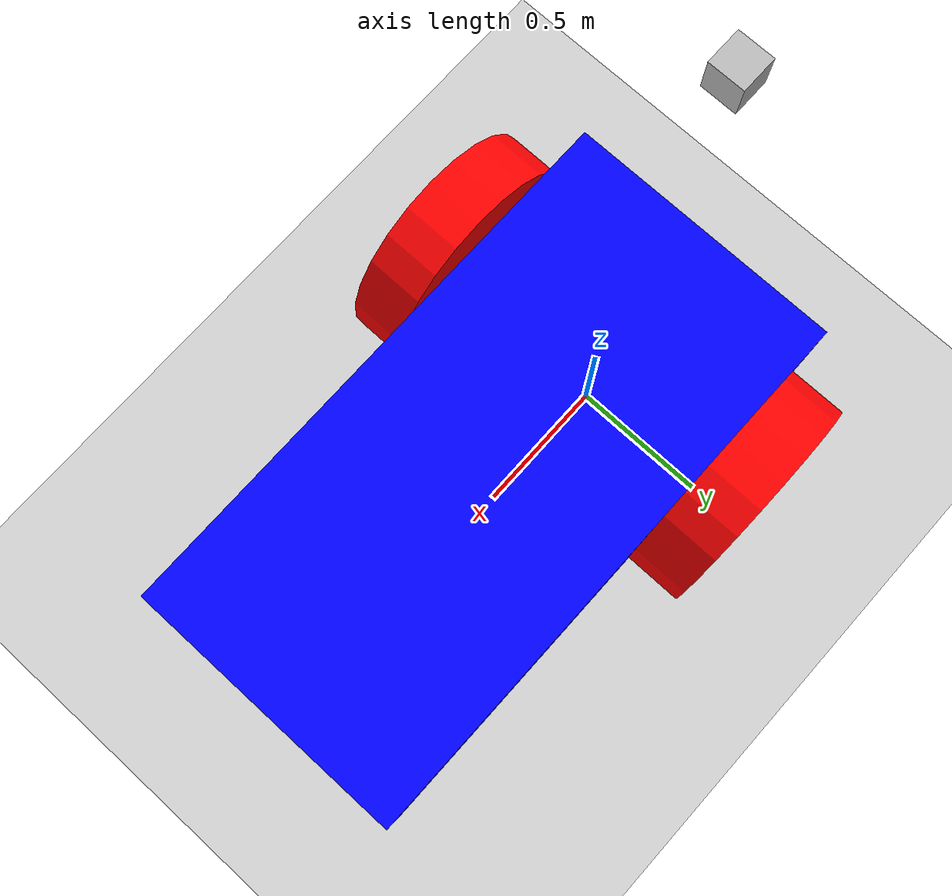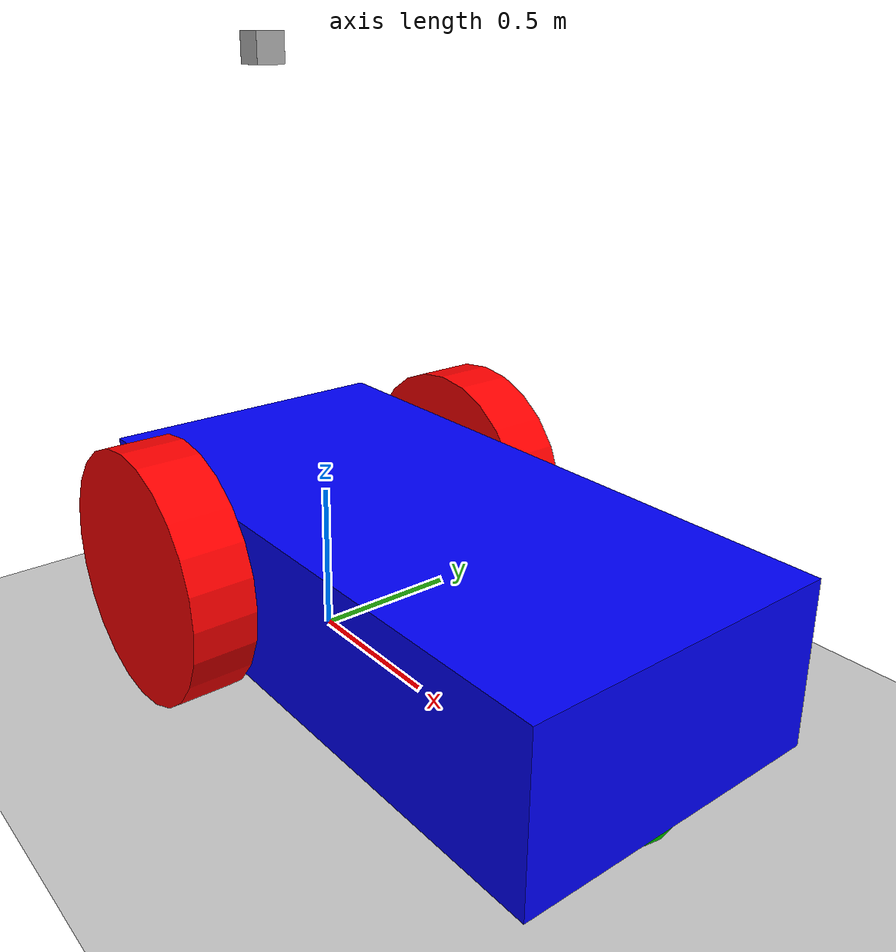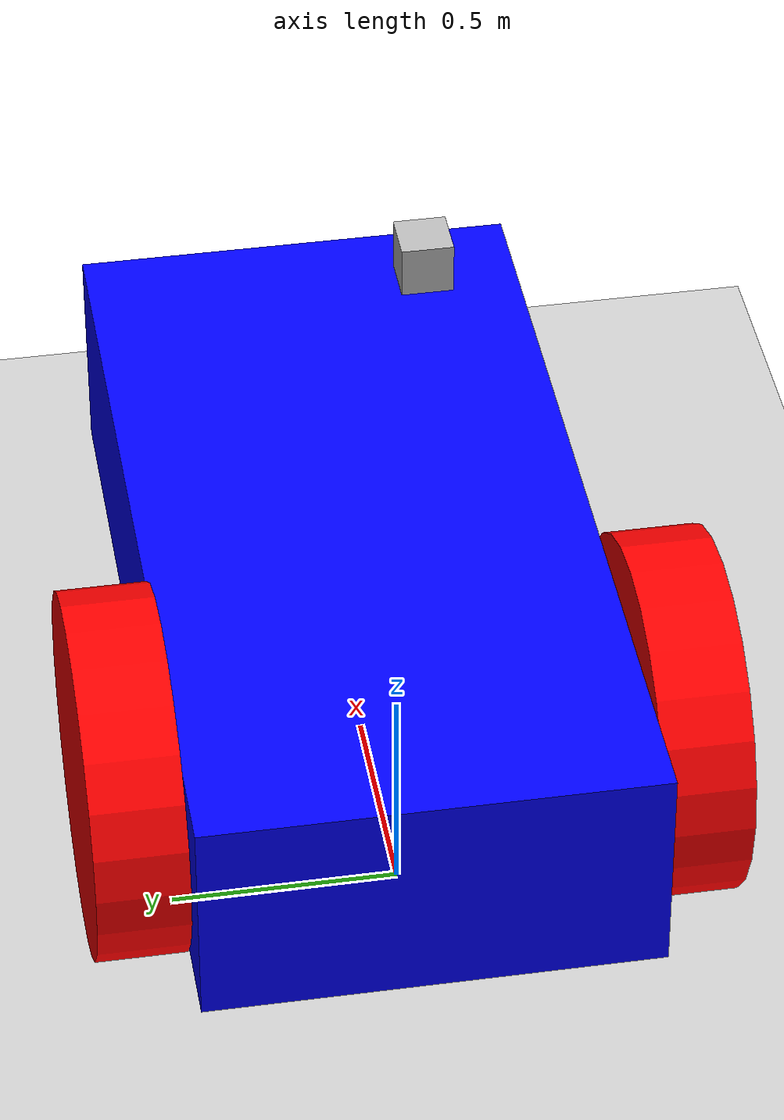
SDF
<?xml version="1.0" ?>
<sdf version="1.8">
  <world name="Moving_robot">
    <physics name="1ms" type="ignored">
      <max_step_size>0.001</max_step_size>
      <real_time_factor>1.0</real_time_factor>
    </physics>
    <plugin filename="ignition-gazebo-sensors-system" name="ignition::gazebo::systems::Sensors">
      <render_engine>ogre</render_engine>
    </plugin>
    <plugin filename="libignition-gazebo-physics-system.so" name="ignition::gazebo::systems::Physics">
    </plugin>
    <plugin filename="libignition-gazebo-user-commands-system.so" name="ignition::gazebo::systems::UserCommands">
    </plugin>
    <plugin filename="libignition-gazebo-scene-broadcaster-system.so" name="ignition::gazebo::systems::SceneBroadcaster">
    </plugin>

    <light type="directional" name="sun">
      <cast_shadows>true</cast_shadows>
      <pose>0 0 10 0 0 0</pose>
      <diffuse>0.8 0.8 0.8 1</diffuse>
      <specular>0.2 0.2 0.2 1</specular>
      <attenuation>
        <range>1000</range>
        <constant>0.9</constant>
        <linear>0.01</linear>
        <quadratic>0.001</quadratic>
      </attenuation>
      <direction>-0.5 0.1 -0.9</direction>
    </light>

    <model name="ground_plane">
      <static>true</static>
      <link name="link">
        <collision name="collision">
          <geometry>
            <plane>
              <normal>0 0 1</normal>
            </plane>
          </geometry>
        </collision>
        <visual name="visual">
          <geometry>
            <plane>
              <normal>0 0 1</normal>
              <size>100 100</size>
            </plane>
          </geometry>
          <material>
            <ambient>0.8 0.8 0.8 1</ambient>
            <diffuse>0.8 0.8 0.8 1</diffuse>
            <specular>0.8 0.8 0.8 1</specular>
          </material>
        </visual>
      </link>
    </model>

    <model name="vehicle">
      <include>
        <uri>model://vehicle</uri>
      </include>

    </model>
    <!-- #endregion -->
  </world>
</sdf>

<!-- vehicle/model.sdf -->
<sdf version="1.8">
  <model name='vehicle_blue'>
    <pose>0 0 0 0 0 0</pose>      <!--the pose is relative to the world by default-->

    <!-- #region links -->
    <link name='chassis'>
      <pose relative_to='__model__'>0.5 0 0.4 0 0 0</pose>
      <inertial>          <!--inertial properties of the link mass, inertia matix-->
        <mass>1.14395</mass>
        <inertia>
          <ixx>0.126164</ixx>
          <ixy>0</ixy>
          <ixz>0</ixz>
          <iyy>0.416519</iyy>
          <iyz>0</iyz>
          <izz>0.481014</izz>
        </inertia>
      </inertial>
      <visual name='visual'>
        <geometry>
          <box>
            <size>2.0 1.0 0.5</size>              <!--question: this size is in meter-->
          </box>
        </geometry>
        <!--let's add color to our link-->
        <material>
          <ambient>0.0 0.0 1.0 1</ambient>
          <diffuse>0.0 0.0 1.0 1</diffuse>
          <specular>0.0 0.0 1.0 1</specular>
        </material>
      </visual>
      <collision name='collision'>          <!--todo: describe why we need the collision-->
        <geometry>
          <box>
            <size>2.0 1.0 0.5</size>
          </box>
        </geometry>
      </collision>
    </link>

    <!--let's build the left wheel-->
    <link name='left_wheel'>
      <pose relative_to="chassis">-0.5 0.6 0 -1.5707 0 0</pose>        <!--angles are in radian-->
      <inertial>
        <mass>2</mass>
        <inertia>
          <ixx>0.145833</ixx>
          <ixy>0</ixy>
          <ixz>0</ixz>
          <iyy>0.145833</iyy>
          <iyz>0</iyz>
          <izz>0.125</izz>
        </inertia>
      </inertial>
      <visual name='visual'>
        <geometry>
          <cylinder>
            <radius>0.4</radius>
            <length>0.2</length>
          </cylinder>
        </geometry>
        <material>
          <ambient>1.0 0.0 0.0 1</ambient>
          <diffuse>1.0 0.0 0.0 1</diffuse>
          <specular>1.0 0.0 0.0 1</specular>
        </material>
      </visual>
      <collision name='collision'>
        <geometry>
          <cylinder>
            <radius>0.4</radius>
            <length>0.2</length>
          </cylinder>
        </geometry>
      </collision>
    </link>

    <!--copy and paste for right wheel but change position-->
    <link name='right_wheel'>
      <pose relative_to="chassis">-0.5 -0.6 0 -1.5707 0 0</pose>        <!--angles are in radian-->
      <inertial>
        <mass>1</mass>
        <inertia>
          <ixx>0.145833</ixx>
          <ixy>0</ixy>
          <ixz>0</ixz>
          <iyy>0.145833</iyy>
          <iyz>0</iyz>
          <izz>0.125</izz>
        </inertia>
      </inertial>
      <visual name='visual'>
        <geometry>
          <cylinder>
            <radius>0.4</radius>
            <length>0.2</length>
          </cylinder>
        </geometry>
        <material>
          <ambient>1.0 0.0 0.0 1</ambient>
          <diffuse>1.0 0.0 0.0 1</diffuse>
          <specular>1.0 0.0 0.0 1</specular>
        </material>
      </visual>
      <collision name='collision'>
        <geometry>
          <cylinder>
            <radius>0.4</radius>
            <length>0.2</length>
          </cylinder>
        </geometry>
      </collision>
    </link>

    <frame name="camera_frame" attached_to='chassis'>
      <pose>-0.8 0 1.5 0 0 0</pose>
    </frame>

    <link name="camera_link">
      <pose relative_to='camera_frame'>0 0 0 0 0 0</pose>
      <inertial>
        <mass>0.1</mass>
        <inertia>
          <ixx>0.000166667</ixx>
          <iyy>0.000166667</iyy>
          <izz>0.000166667</izz>
        </inertia>
      </inertial>
      <collision name="collision">
        <geometry>
          <box>
            <size>0.1 0.1 0.1</size>
          </box>
        </geometry>
      </collision>
      <visual name="visual">
        <geometry>
          <box>
            <size>0.1 0.1 0.1</size>
          </box>
        </geometry>
      </visual>
      <sensor name="camera" type="camera">
        <camera>
          <horizontal_fov>1.047</horizontal_fov>
          <image>
            <width>320</width>
            <height>240</height>
          </image>
          <clip>
            <near>0.1</near>
            <far>100</far>
          </clip>
        </camera>
        <always_on>1</always_on>
        <update_rate>30</update_rate>
        <visualize>true</visualize>
        <topic>camera</topic>
      </sensor>
    </link>

    <joint name='camera_joint' type='fixed'>
      <parent>chassis</parent>
      <child>camera_link</child>
    </joint>

    <frame name="caster_frame" attached_to='chassis'>
      <pose>0.8 0 -0.2 0 0 0</pose>
    </frame>

    <!--caster wheel-->
    <link name='caster'>
      <pose relative_to='caster_frame'/>
      <inertial>
        <mass>1</mass>
        <inertia>
          <ixx>0.1</ixx>
          <ixy>0</ixy>
          <ixz>0</ixz>
          <iyy>0.1</iyy>
          <iyz>0</iyz>
          <izz>0.1</izz>
        </inertia>
      </inertial>
      <visual name='visual'>
        <geometry>
          <sphere>
            <radius>0.2</radius>
          </sphere>
        </geometry>
        <material>
          <ambient>0.0 1 0.0 1</ambient>
          <diffuse>0.0 1 0.0 1</diffuse>
          <specular>0.0 1 0.0 1</specular>
        </material>
      </visual>
      <collision name='collision'>
        <geometry>
          <sphere>
            <radius>0.2</radius>
          </sphere>
        </geometry>
      </collision>
    </link>
    <!-- #endregion links -->
    <!-- #region joints -->
    <!--connecting these links together using joints-->
    <joint name='left_wheel_joint' type='revolute'>        <!--continous joint is not supported yet-->
      <pose relative_to='left_wheel'/>
      <parent>chassis</parent>
      <child>left_wheel</child>
      <axis>
        <xyz expressed_in='__model__'>0 1 0</xyz>          <!--can be defined as any frame or even arbitrary frames-->
        <limit>
          <lower>-1.79769e+308</lower>            <!--negative infinity-->
          <upper>1.79769e+308</upper>            <!--positive infinity-->
        </limit>
      </axis>
    </joint>

    <joint name='right_wheel_joint' type='revolute'>
      <pose relative_to='right_wheel'/>
      <parent>chassis</parent>
      <child>right_wheel</child>
      <axis>
        <xyz expressed_in='__model__'>0 1 0</xyz>
        <limit>
          <lower>-1.79769e+308</lower>            <!--negative infinity-->
          <upper>1.79769e+308</upper>            <!--positive infinity-->
        </limit>
      </axis>
    </joint>

    <!--different type of joints ball joint-->      <!--defult value is the child-->
    <joint name='caster_wheel' type='ball'>
      <parent>chassis</parent>
      <child>caster</child>
      <axis>
        <xyz expressed_in='__model__'>0 1 0</xyz>
        <limit>
          <lower>-1.79769e+308</lower>            <!--negative infinity-->
          <upper>1.79769e+308</upper>            <!--positive infinity-->
        </limit>
      </axis>
    </joint>
    <!-- #endregion joints-->

    <!--diff drive plugin-->
    <plugin filename="libignition-gazebo-diff-drive-system.so" name="ignition::gazebo::systems::DiffDrive">
      <left_joint>left_wheel_joint</left_joint>
      <right_joint>right_wheel_joint</right_joint>
      <wheel_separation>1.2</wheel_separation>
      <wheel_radius>0.4</wheel_radius>
      <odom_publish_frequency>1</odom_publish_frequency>
      <frame_id>odom</frame_id>
			<child_frame_id>chassis</child_frame_id>
    </plugin>

    <plugin
      filename="libignition-gazebo-joint-state-publisher-system.so"
      name="ignition::gazebo::systems::JointStatePublisher">
    </plugin>
  </model>
</sdf>
